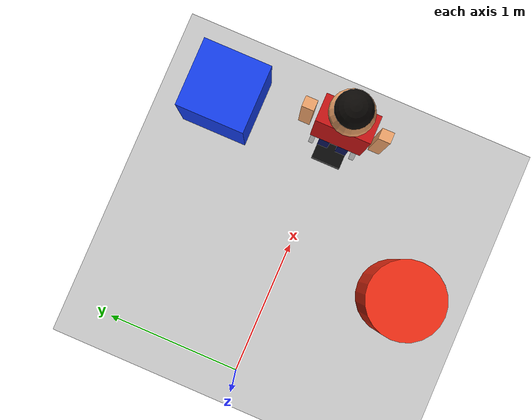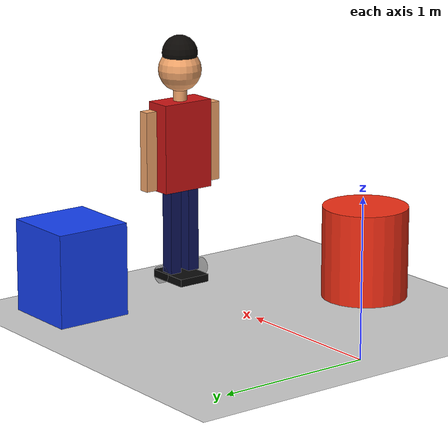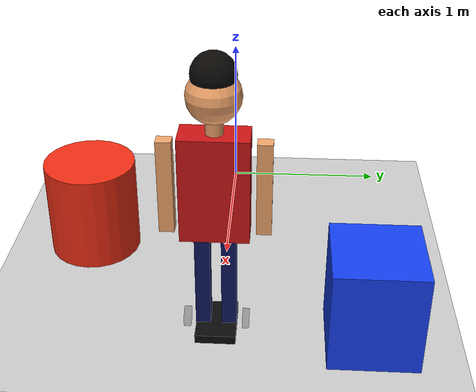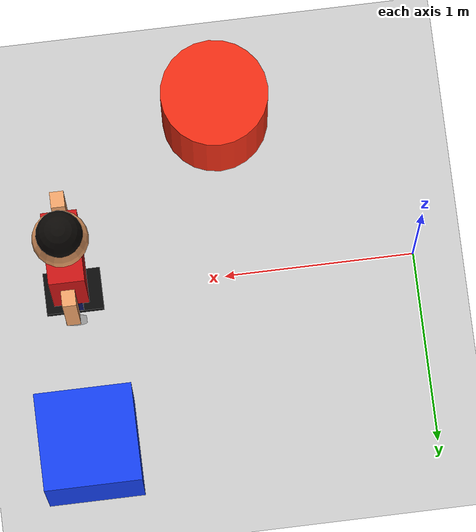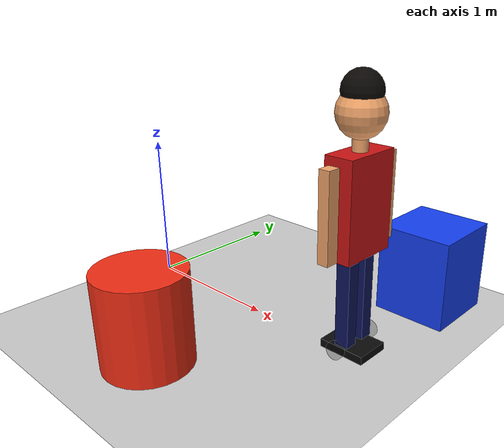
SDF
<?xml version="1.0"?>
<sdf version="1.6">
  <world name="human_tracking_world">
    <include>
      <uri>model://sun</uri>
    </include>

    <include>
      <uri>model://ground_plane</uri>
    </include>

    <model name="tracking_subject">
      <static>false</static>
      <pose>1.8 0.0 0.06 0 0 0</pose>
      <link name="base">
        <visual name="base_visual">
          <pose>0 0 0.025 0 0 0</pose>
          <geometry>
            <box>
              <size>0.30 0.22 0.05</size>
            </box>
          </geometry>
          <material>
            <ambient>0.03 0.03 0.03 1</ambient>
            <diffuse>0.04 0.04 0.04 1</diffuse>
          </material>
        </visual>
        <visual name="left_leg_visual">
          <pose>0 0.07 0.34 0 0 0</pose>
          <geometry>
            <box>
              <size>0.09 0.08 0.56</size>
            </box>
          </geometry>
          <material>
            <ambient>0.03 0.05 0.22 1</ambient>
            <diffuse>0.05 0.08 0.36 1</diffuse>
          </material>
        </visual>
        <visual name="right_leg_visual">
          <pose>0 -0.07 0.34 0 0 0</pose>
          <geometry>
            <box>
              <size>0.09 0.08 0.56</size>
            </box>
          </geometry>
          <material>
            <ambient>0.03 0.05 0.22 1</ambient>
            <diffuse>0.05 0.08 0.36 1</diffuse>
          </material>
        </visual>
        <visual name="torso_visual">
          <pose>0 0 0.91 0 0 0</pose>
          <geometry>
            <box>
              <size>0.18 0.36 0.58</size>
            </box>
          </geometry>
          <material>
            <ambient>0.55 0.05 0.05 1</ambient>
            <diffuse>0.80 0.08 0.08 1</diffuse>
          </material>
        </visual>
        <visual name="left_arm_visual">
          <pose>0 0.25 0.90 0 0 0</pose>
          <geometry>
            <box>
              <size>0.07 0.08 0.52</size>
            </box>
          </geometry>
          <material>
            <ambient>0.72 0.48 0.32 1</ambient>
            <diffuse>0.95 0.65 0.42 1</diffuse>
          </material>
        </visual>
        <visual name="right_arm_visual">
          <pose>0 -0.25 0.90 0 0 0</pose>
          <geometry>
            <box>
              <size>0.07 0.08 0.52</size>
            </box>
          </geometry>
          <material>
            <ambient>0.72 0.48 0.32 1</ambient>
            <diffuse>0.95 0.65 0.42 1</diffuse>
          </material>
        </visual>
        <visual name="neck_visual">
          <pose>0 0 1.24 0 0 0</pose>
          <geometry>
            <cylinder>
              <radius>0.045</radius>
              <length>0.10</length>
            </cylinder>
          </geometry>
          <material>
            <ambient>0.72 0.48 0.32 1</ambient>
            <diffuse>0.95 0.65 0.42 1</diffuse>
          </material>
        </visual>
        <visual name="head_visual">
          <pose>0 0 1.40 0 0 0</pose>
          <geometry>
            <sphere>
              <radius>0.14</radius>
            </sphere>
          </geometry>
          <material>
            <ambient>0.72 0.48 0.32 1</ambient>
            <diffuse>0.95 0.65 0.42 1</diffuse>
          </material>
        </visual>
        <visual name="hair_visual">
          <pose>0 0 1.51 0 0 0</pose>
          <geometry>
            <sphere>
              <radius>0.115</radius>
            </sphere>
          </geometry>
          <material>
            <ambient>0.02 0.015 0.01 1</ambient>
            <diffuse>0.04 0.03 0.02 1</diffuse>
          </material>
        </visual>
        <visual name="left_wheel_visual">
          <pose>0 0.16 0.06 1.5708 0 0</pose>
          <geometry>
            <cylinder>
              <radius>0.055</radius>
              <length>0.035</length>
            </cylinder>
          </geometry>
          <material>
            <ambient>0.01 0.01 0.01 0.25</ambient>
            <diffuse>0.01 0.01 0.01 0.25</diffuse>
          </material>
        </visual>
        <visual name="right_wheel_visual">
          <pose>0 -0.16 0.06 1.5708 0 0</pose>
          <geometry>
            <cylinder>
              <radius>0.055</radius>
              <length>0.035</length>
            </cylinder>
          </geometry>
          <material>
            <ambient>0.01 0.01 0.01 0.25</ambient>
            <diffuse>0.01 0.01 0.01 0.25</diffuse>
          </material>
        </visual>
        <inertial>
          <mass>2.0</mass>
          <inertia>
            <ixx>0.06</ixx>
            <iyy>0.06</iyy>
            <izz>0.04</izz>
            <ixy>0</ixy>
            <ixz>0</ixz>
            <iyz>0</iyz>
          </inertia>
        </inertial>
      </link>

      <link name="left_wheel">
        <pose>0 0.16 0.06 1.5708 0 0</pose>
        <collision name="collision">
          <geometry>
            <cylinder>
              <radius>0.055</radius>
              <length>0.035</length>
            </cylinder>
          </geometry>
          <surface>
            <friction>
              <ode>
                <mu>2.0</mu>
                <mu2>2.0</mu2>
              </ode>
            </friction>
          </surface>
        </collision>
        <inertial>
          <mass>0.12</mass>
          <inertia>
            <ixx>0.0002</ixx>
            <iyy>0.0002</iyy>
            <izz>0.0002</izz>
            <ixy>0</ixy>
            <ixz>0</ixz>
            <iyz>0</iyz>
          </inertia>
        </inertial>
      </link>

      <link name="right_wheel">
        <pose>0 -0.16 0.06 1.5708 0 0</pose>
        <collision name="collision">
          <geometry>
            <cylinder>
              <radius>0.055</radius>
              <length>0.035</length>
            </cylinder>
          </geometry>
          <surface>
            <friction>
              <ode>
                <mu>2.0</mu>
                <mu2>2.0</mu2>
              </ode>
            </friction>
          </surface>
        </collision>
        <inertial>
          <mass>0.12</mass>
          <inertia>
            <ixx>0.0002</ixx>
            <iyy>0.0002</iyy>
            <izz>0.0002</izz>
            <ixy>0</ixy>
            <ixz>0</ixz>
            <iyz>0</iyz>
          </inertia>
        </inertial>
      </link>

      <joint name="left_wheel_joint" type="revolute">
        <parent>base</parent>
        <child>left_wheel</child>
        <axis>
          <xyz>0 1 0</xyz>
          <use_parent_model_frame>true</use_parent_model_frame>
          <limit>
            <lower>-1e16</lower>
            <upper>1e16</upper>
          </limit>
        </axis>
      </joint>

      <joint name="right_wheel_joint" type="revolute">
        <parent>base</parent>
        <child>right_wheel</child>
        <axis>
          <xyz>0 1 0</xyz>
          <use_parent_model_frame>true</use_parent_model_frame>
          <limit>
            <lower>-1e16</lower>
            <upper>1e16</upper>
          </limit>
        </axis>
      </joint>

      <plugin name="tracking_subject_diff_drive" filename="libgazebo_ros_diff_drive.so">
        <ros>
          <remapping>cmd_vel:=/tracking_subject/cmd_vel</remapping>
          <remapping>odom:=/tracking_subject/odom</remapping>
        </ros>
        <left_joint>left_wheel_joint</left_joint>
        <right_joint>right_wheel_joint</right_joint>
        <wheel_separation>0.32</wheel_separation>
        <wheel_diameter>0.11</wheel_diameter>
        <max_wheel_torque>20.0</max_wheel_torque>
        <max_wheel_acceleration>8.0</max_wheel_acceleration>
        <command_topic>/tracking_subject/cmd_vel</command_topic>
        <odometry_topic>/tracking_subject/odom</odometry_topic>
        <odometry_frame>tracking_subject_odom</odometry_frame>
        <robot_base_frame>base</robot_base_frame>
        <publish_odom>true</publish_odom>
        <publish_odom_tf>false</publish_odom_tf>
        <publish_wheel_tf>false</publish_wheel_tf>
        <update_rate>50</update_rate>
      </plugin>
    </model>

    <model name="red_cylinder_obstacle">
      <static>true</static>
      <pose>0.95 -0.85 0.30 0 0 0</pose>
      <link name="link">
        <collision name="collision">
          <geometry>
            <cylinder>
              <radius>0.28</radius>
              <length>0.60</length>
            </cylinder>
          </geometry>
        </collision>
        <visual name="visual">
          <geometry>
            <cylinder>
              <radius>0.28</radius>
              <length>0.60</length>
            </cylinder>
          </geometry>
          <material>
            <ambient>0.85 0.12 0.05 1</ambient>
            <diffuse>0.95 0.18 0.08 1</diffuse>
          </material>
        </visual>
      </link>
    </model>

    <model name="blue_box_obstacle">
      <static>true</static>
      <pose>1.80 0.85 0.30 0 0 0</pose>
      <link name="link">
        <collision name="collision">
          <geometry>
            <box>
              <size>0.50 0.50 0.60</size>
            </box>
          </geometry>
        </collision>
        <visual name="visual">
          <geometry>
            <box>
              <size>0.50 0.50 0.60</size>
            </box>
          </geometry>
          <material>
            <ambient>0.05 0.18 0.75 1</ambient>
            <diffuse>0.08 0.25 0.95 1</diffuse>
          </material>
        </visual>
      </link>
    </model>
    <plugin name="gazebo_ros_state" filename="libgazebo_ros_state.so">
      <ros>
        <namespace>/gazebo</namespace>
      </ros>
      <update_rate>30.0</update_rate>
    </plugin>
  </world>
</sdf>
